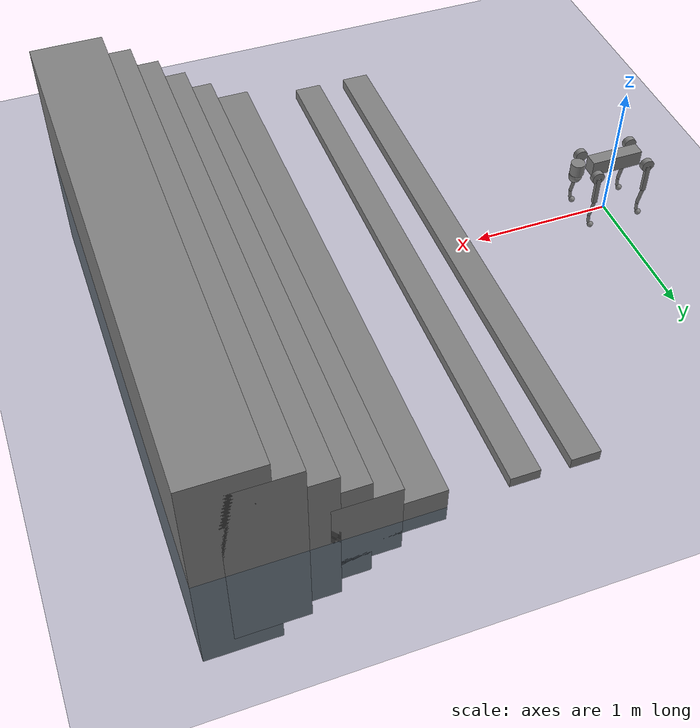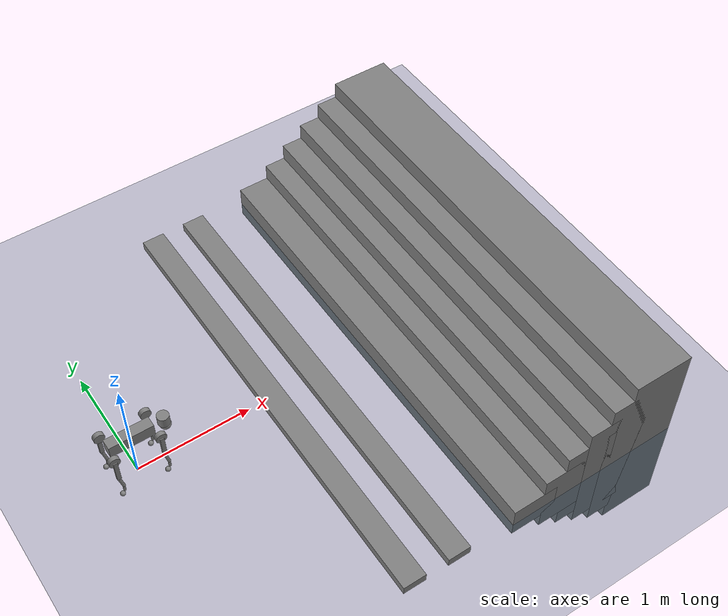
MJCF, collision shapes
<mujoco model="go2 scene">
  <include file="go2_servo.xml"/>

  <statistic center="0 0 0.1" extent="0.8"/>

  <visual>
    <headlight diffuse="0.6 0.6 0.6" ambient="0.3 0.3 0.3" specular="0 0 0"/>
    <rgba haze="0.15 0.25 0.35 1"/>
    <global azimuth="-130" elevation="-20"/>
  </visual>

  <asset>
    <texture type="skybox" builtin="gradient" rgb1="0.3 0.5 0.7" rgb2="0 0 0" width="512" height="3072"/>
    <texture type="2d" name="groundplane" builtin="checker" mark="edge" rgb1="0.2 0.3 0.4" rgb2="0.1 0.2 0.3"
      markrgb="0.8 0.8 0.8" width="300" height="300"/>
    <material name="groundplane" texture="groundplane" texuniform="true" texrepeat="5 5" reflectance="0.2"/>
  </asset>

  <worldbody>
    <light pos="0 0 1.5" dir="0 0 -1" directional="true"/>
    <geom name="floor" size="0 0 0.05" type="plane" material="groundplane"/>

    <geom pos="1.2 0 0.04" type="box"  size="0.1 2 0.04" quat="1.0 0 0 0"/>
    <geom pos="1.6 0 0.04" type="box"  size="0.1 2 0.04" quat="1.0 0 0 0"/>

    <geom pos="2.3 0 0.02" type="box"  size="0.2 2 0.15" quat="1.0 0 0 0"/>
    <geom pos="2.6 0 0.02" type="box"  size="0.22 2 0.3" quat="1.0 0 0 0"/>
    <geom pos="2.8 0 0.02" type="box"  size="0.23 2 0.45" quat="1.0 0 0 0"/>
    <geom pos="3 0 0.02" type="box"  size="0.24 2 0.6" quat="1.0 0 0 0"/>
    <geom pos="3.2 0 0.02" type="box"  size="0.25 2 0.75" quat="1.0 0 0 0"/>
    <geom pos="3.4 0 0.02" type="box"  size="0.26 2 0.9" quat="1.0 0 0 0"/>
  </worldbody>
</mujoco>

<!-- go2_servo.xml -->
<mujoco model="go2">
  <compiler angle="radian" meshdir="assets" autolimits="true" inertiafromgeom="false"/>

  <option cone="elliptic" impratio="100" />

  <default>
    <default class="go2">
      <geom friction="0.4" margin="0.001" condim="1"/>
      <joint axis="0 1 0" damping="0.1" armature="0.01" frictionloss="0.2"/>
      <general forcerange="-23.7 23.7" biastype="affine" gainprm="35 0 0" biasprm="0 -35 -0.5"/>
      <default class="abduction">
        <joint axis="1 0 0" range="-1.0472 1.0472"/>
      </default>
      <default class="hip">
        <default class="front_hip">
          <joint range="-1.5708 3.4907"/>
        </default>
        <default class="back_hip">
          <joint range="-0.5236 4.5379"/>
        </default>
      </default>
      <default class="knee">
        <joint range="-2.7227 -0.83776"/>
        <general forcerange="-45.43 45.43" ctrlrange="-2.6227 -0.82776"/>
      </default>
      <default class="visual">
        <geom type="mesh" contype="0" conaffinity="0" group="2"/>
      </default>
      <default class="collision">
        <geom group="3"/>
        <default class="foot">
          <geom size="0.022" pos="-0.002 0 -0.213" priority="1" condim="6"
            friction="0.4 0.02 0.01"/>
        </default>
      </default>
    </default>
  </default>

  <asset>
    <material name="metal" rgba=".9 .95 .95 1" />
    <material name="black" rgba="0 0 0 1" />
    <material name="white" rgba="1 1 1 1" />
    <material name="gray" rgba="0.671705 0.692426 0.774270 1" />

    <mesh file="base_0.obj" />
    <mesh file="base_1.obj" />
    <mesh file="base_2.obj" />
    <mesh file="base_3.obj" />
    <mesh file="base_4.obj" />
    <mesh file="hip_0.obj" />
    <mesh file="hip_1.obj" />
    <mesh file="thigh_0.obj" />
    <mesh file="thigh_1.obj" />
    <mesh file="thigh_mirror_0.obj" />
    <mesh file="thigh_mirror_1.obj" />
    <mesh file="calf_0.obj" />
    <mesh file="calf_1.obj" />
    <mesh file="calf_mirror_0.obj" />
    <mesh file="calf_mirror_1.obj" />
    <mesh file="foot.obj" />
  </asset>

  <worldbody>
    <body name="base_link" pos="0 0 0.445" childclass="go2">
      <inertial pos="0.021112 0 -0.005366" quat="-0.000543471 0.713435 -0.00173769 0.700719"
        mass="6.921"
        diaginertia="0.107027 0.0980771 0.0244531" />
      <freejoint />
      <geom mesh="base_0" material="black" class="visual" />
      <geom mesh="base_1" material="black" class="visual" />
      <geom mesh="base_2" material="black" class="visual" />
      <geom mesh="base_3" material="white" class="visual" />
      <geom mesh="base_4" material="gray" class="visual" />
      <geom size="0.1881 0.04675 0.057" type="box" class="collision" />
      <geom size="0.05 0.045" pos="0.285 0 0.01" type="cylinder" class="collision" />
      <geom size="0.047" pos="0.293 0 -0.06" class="collision" />
      <site name="imu" pos="-0.02557 0 0.04232" />
      <body name="FR_hip" pos="0.1934 -0.0465 0">
        <inertial pos="-0.0054 -0.00194 -0.000105" quat="0.498237 0.505462 0.499245 0.497014"
          mass="0.678"
          diaginertia="0.00088403 0.000596003 0.000479967" />
        <joint name="FR_hip_joint" class="abduction" />
        <geom mesh="hip_0" material="metal" class="visual" quat="4.63268e-05 1 0 0" />
        <geom mesh="hip_1" material="gray" class="visual" quat="4.63268e-05 1 0 0" />
        <geom size="0.046 0.02" pos="0 -0.08 0" quat="0.707107 0.707107 0 0" type="cylinder"
          class="collision" />
        <body name="FR_thigh" pos="0 -0.0955 0">
          <inertial pos="-0.00374 0.0223 -0.0327" quat="0.551623 -0.0200632 0.0847635 0.829533"
            mass="1.152"
            diaginertia="0.00594973 0.00584149 0.000878787" />
          <joint name="FR_thigh_joint" class="front_hip" />
          <geom mesh="thigh_mirror_0" material="metal" class="visual" />
          <geom mesh="thigh_mirror_1" material="gray" class="visual" />
          <geom size="0.1065 0.01225 0.017" pos="0 0 -0.1065" quat="0.707107 0 0.707107 0"
            type="box" class="collision" />
          <body name="FR_calf" pos="0 0 -0.213">
            <inertial pos="0.00629595 0.000622121 -0.141417"
              quat="0.703508 -0.00450087 0.00154099 0.710672"
              mass="0.241352" diaginertia="0.0014901 0.00146356 5.31397e-05" />
            <joint name="FR_calf_joint" class="knee" />
            <geom mesh="calf_mirror_0" material="gray" class="visual" />
            <geom mesh="calf_mirror_1" material="black" class="visual" />
            <geom size="0.013 0.06" pos="0.01 0 -0.06" quat="0.995004 0 -0.0998334 0"
              type="cylinder" class="collision" />
            <geom size="0.011 0.0325" pos="0.02 0 -0.148" quat="0.999688 0 0.0249974 0"
              type="cylinder" class="collision" />
            <geom pos="0 0 -0.213" mesh="foot" class="visual" material="black" />
            <geom name="FR" class="foot" />
            <site name="front_right_foot" pos="0 0 -0.213"/>
            <body name="FR_foot" pos="0 0 -0.213"/>
          </body>
        </body>
      </body>
      <body name="FL_hip" pos="0.1934 0.0465 0">
        <inertial pos="-0.0054 0.00194 -0.000105" quat="0.497014 0.499245 0.505462 0.498237"
          mass="0.678"
          diaginertia="0.00088403 0.000596003 0.000479967" />
        <joint name="FL_hip_joint" class="abduction" />
        <geom mesh="hip_0" material="metal" class="visual" />
        <geom mesh="hip_1" material="gray" class="visual" />
        <geom size="0.046 0.02" pos="0 0.08 0" quat="1 1 0 0" type="cylinder" class="collision" />
        <body name="FL_thigh" pos="0 0.0955 0">
          <inertial pos="-0.00374 -0.0223 -0.0327" quat="0.829533 0.0847635 -0.0200632 0.551623"
            mass="1.152"
            diaginertia="0.00594973 0.00584149 0.000878787" />
          <joint name="FL_thigh_joint" class="front_hip" />
          <geom mesh="thigh_0" material="metal" class="visual" />
          <geom mesh="thigh_1" material="gray" class="visual" />
          <geom size="0.1065 0.01225 0.017" pos="0 0 -0.1065" quat="0.707107 0 0.707107 0"
            type="box" class="collision" />
          <body name="FL_calf" pos="0 0 -0.213">
            <inertial pos="0.00629595 -0.000622121 -0.141417"
              quat="0.710672 0.00154099 -0.00450087 0.703508"
              mass="0.241352" diaginertia="0.0014901 0.00146356 5.31397e-05" />
            <joint name="FL_calf_joint" class="knee" />
            <geom mesh="calf_0" material="gray" class="visual" />
            <geom mesh="calf_1" material="black" class="visual" />
            <geom size="0.012 0.06" pos="0.008 0 -0.06" quat="0.994493 0 -0.104807 0"
              type="cylinder" class="collision" />
            <geom size="0.011 0.0325" pos="0.02 0 -0.148" quat="0.999688 0 0.0249974 0"
              type="cylinder" class="collision" />
            <geom pos="0 0 -0.213" mesh="foot" class="visual" material="black" />
            <geom name="FL" class="foot" />
            <site name="front_left_foot" pos="0 0 -0.213"/>
            <body name="FL_foot" pos="0 0 -0.213" />
          </body>
        </body>
      </body>
      <body name="RR_hip" pos="-0.1934 -0.0465 0">
        <inertial pos="0.0054 -0.00194 -0.000105" quat="0.499245 0.497014 0.498237 0.505462"
          mass="0.678"
          diaginertia="0.00088403 0.000596003 0.000479967" />
        <joint name="RR_hip_joint" class="abduction" />
        <geom mesh="hip_0" material="metal" class="visual"
          quat="2.14617e-09 4.63268e-05 4.63268e-05 -1" />
        <geom mesh="hip_1" material="gray" class="visual"
          quat="2.14617e-09 4.63268e-05 4.63268e-05 -1" />
        <geom size="0.046 0.02" pos="0 -0.08 0" quat="0.707107 0.707107 0 0" type="cylinder"
          class="collision" />
        <body name="RR_thigh" pos="0 -0.0955 0">
          <inertial pos="-0.00374 0.0223 -0.0327" quat="0.551623 -0.0200632 0.0847635 0.829533"
            mass="1.152"
            diaginertia="0.00594973 0.00584149 0.000878787" />
          <joint name="RR_thigh_joint" class="back_hip" />
          <geom mesh="thigh_mirror_0" material="metal" class="visual" />
          <geom mesh="thigh_mirror_1" material="gray" class="visual" />
          <geom size="0.1065 0.01225 0.017" pos="0 0 -0.1065" quat="0.707107 0 0.707107 0"
            type="box" class="collision" />
          <body name="RR_calf" pos="0 0 -0.213">
            <inertial pos="0.00629595 0.000622121 -0.141417"
              quat="0.703508 -0.00450087 0.00154099 0.710672"
              mass="0.241352" diaginertia="0.0014901 0.00146356 5.31397e-05" />
            <joint name="RR_calf_joint" class="knee" />
            <geom mesh="calf_mirror_0" material="gray" class="visual" />
            <geom mesh="calf_mirror_1" material="black" class="visual" />
            <geom size="0.013 0.06" pos="0.01 0 -0.06" quat="0.995004 0 -0.0998334 0"
              type="cylinder" class="collision" />
            <geom size="0.011 0.0325" pos="0.02 0 -0.148" quat="0.999688 0 0.0249974 0"
              type="cylinder" class="collision" />
            <geom pos="0 0 -0.213" mesh="foot" class="visual" material="black" />
            <geom name="RR" class="foot" />
            <site name="hind_right_foot" pos="0 0 -0.213"/>
            <body name="RR_foot" pos="0 0 -0.213" />
          </body>
        </body>
      </body>
      <body name="RL_hip" pos="-0.1934 0.0465 0">
        <inertial pos="0.0054 0.00194 -0.000105" quat="0.505462 0.498237 0.497014 0.499245"
          mass="0.678"
          diaginertia="0.00088403 0.000596003 0.000479967" />
        <joint name="RL_hip_joint" class="abduction" />
        <geom mesh="hip_0" material="metal" class="visual" quat="4.63268e-05 0 1 0" />
        <geom mesh="hip_1" material="gray" class="visual" quat="4.63268e-05 0 1 0" />
        <geom size="0.046 0.02" pos="0 0.08 0" quat="0.707107 0.707107 0 0" type="cylinder"
          class="collision" />
        <body name="RL_thigh" pos="0 0.0955 0">
          <inertial pos="-0.00374 -0.0223 -0.0327" quat="0.829533 0.0847635 -0.0200632 0.551623"
            mass="1.152"
            diaginertia="0.00594973 0.00584149 0.000878787" />
          <joint name="RL_thigh_joint" class="back_hip" />
          <geom mesh="thigh_0" material="metal" class="visual" />
          <geom mesh="thigh_1" material="gray" class="visual" />
          <geom size="0.1065 0.01225 0.017" pos="0 0 -0.1065" quat="0.707107 0 0.707107 0"
            type="box" class="collision" />
          <body name="RL_calf" pos="0 0 -0.213">
            <inertial pos="0.00629595 -0.000622121 -0.141417"
              quat="0.710672 0.00154099 -0.00450087 0.703508"
              mass="0.241352" diaginertia="0.0014901 0.00146356 5.31397e-05" />
            <joint name="RL_calf_joint" class="knee" />
            <geom mesh="calf_0" material="gray" class="visual" />
            <geom mesh="calf_1" material="black" class="visual" />
            <geom size="0.013 0.06" pos="0.01 0 -0.06" quat="0.995004 0 -0.0998334 0"
              type="cylinder" class="collision" />
            <geom size="0.011 0.0325" pos="0.02 0 -0.148" quat="0.999688 0 0.0249974 0"
              type="cylinder" class="collision" />
            <geom pos="0 0 -0.213" mesh="foot" class="visual" material="black" />
            <geom name="RL" class="foot" />
            <site name="hind_left_foot" pos="0 0 -0.213"/>
            <body name="RL_foot" pos="0 0 -0.213" />
          </body>
        </body>
      </body>
    </body>
  </worldbody>

  <actuator>
    <general class="abduction" name="FR_hip" joint="FR_hip_joint" />
    <general class="hip" name="FR_thigh" joint="FR_thigh_joint" />
    <general class="knee" name="FR_calf" joint="FR_calf_joint" />
    <general class="abduction" name="FL_hip" joint="FL_hip_joint" />
    <general class="hip" name="FL_thigh" joint="FL_thigh_joint" />
    <general class="knee" name="FL_calf" joint="FL_calf_joint" />
    <general class="abduction" name="RR_hip" joint="RR_hip_joint" />
    <general class="hip" name="RR_thigh" joint="RR_thigh_joint" />
    <general class="knee" name="RR_calf" joint="RR_calf_joint" />
    <general class="abduction" name="RL_hip" joint="RL_hip_joint" />
    <general class="hip" name="RL_thigh" joint="RL_thigh_joint" />
    <general class="knee" name="RL_calf" joint="RL_calf_joint" />
  </actuator>

    <sensor>
    <!-- IMU: -->
    <gyro name="imu_gyro" site="imu"/>
    <framequat name="imu_orientation" objtype="site" objname="imu"/>
    <accelerometer name="imu_acceleration" site="imu"/>

    <!-- State Estimator: -->
    <velocimeter name="local_linvel" site="imu"/>
    <framepos name="imu_position" objtype="site" objname="imu"/>
    <framelinvel name="fr_global_linvel" objtype="site" objname="front_right_foot"/>
    <framelinvel name="fl_global_linvel" objtype="site" objname="front_left_foot"/>
    <framelinvel name="hr_global_linvel" objtype="site" objname="hind_right_foot"/>
    <framelinvel name="hl_global_linvel" objtype="site" objname="hind_left_foot"/>
    <framepos name="fr_pos" objtype="site" objname="front_right_foot" reftype="site" refname="imu"/>
    <framepos name="fl_pos" objtype="site" objname="front_left_foot" reftype="site" refname="imu"/>
    <framepos name="hr_pos" objtype="site" objname="hind_right_foot" reftype="site" refname="imu"/>
    <framepos name="hl_pos" objtype="site" objname="hind_left_foot" reftype="site" refname="imu"/>

    <!-- Globals: -->
    <framezaxis name="upvector" objtype="site" objname="imu"/>
    <framexaxis name="forwardvector" objtype="site" objname="imu"/>
    <framelinvel name="global_linvel" objtype="site" objname="imu"/>
    <frameangvel name="global_angvel" objtype="site" objname="imu"/>
  </sensor>

  <keyframe>
    <key name="home" qpos="0 0 0.27 1 0 0 0 0 0.9 -1.8 0 0.9 -1.8 0 0.9 -1.8 0 0.9 -1.8"
      ctrl="0 0.9 -1.8 0 0.9 -1.8 0 0.9 -1.8 0 0.9 -1.8" />
  </keyframe>
</mujoco>
